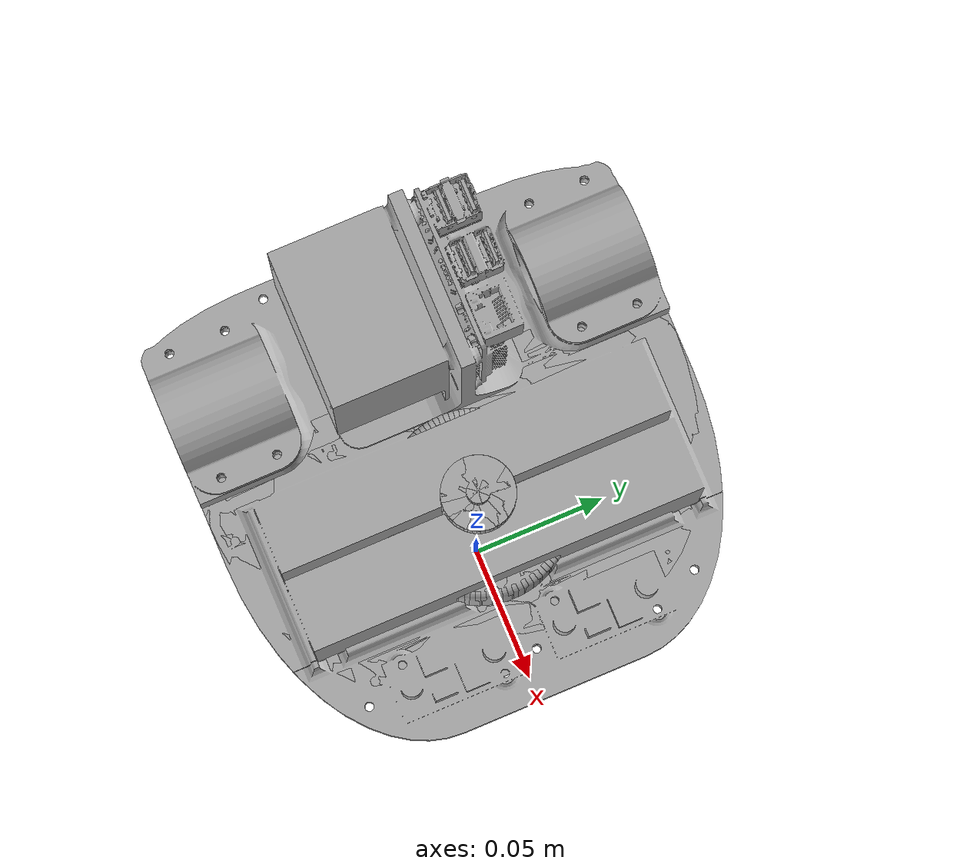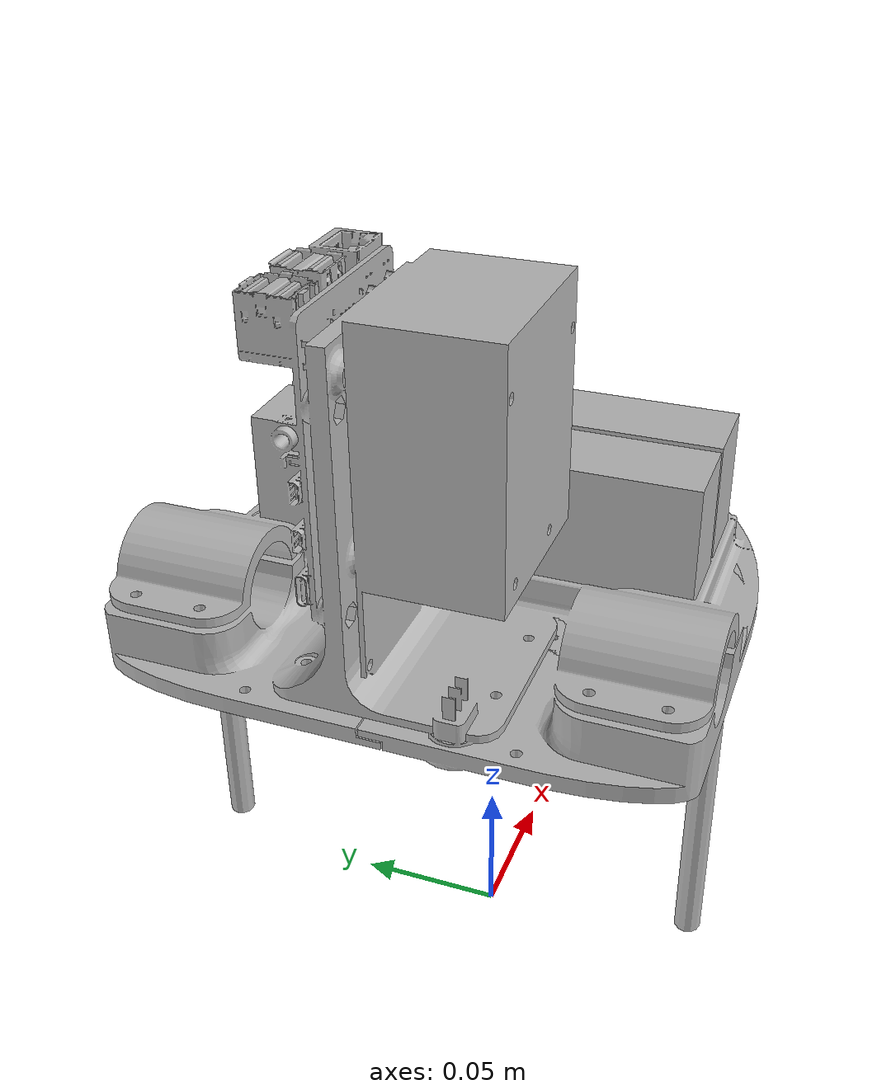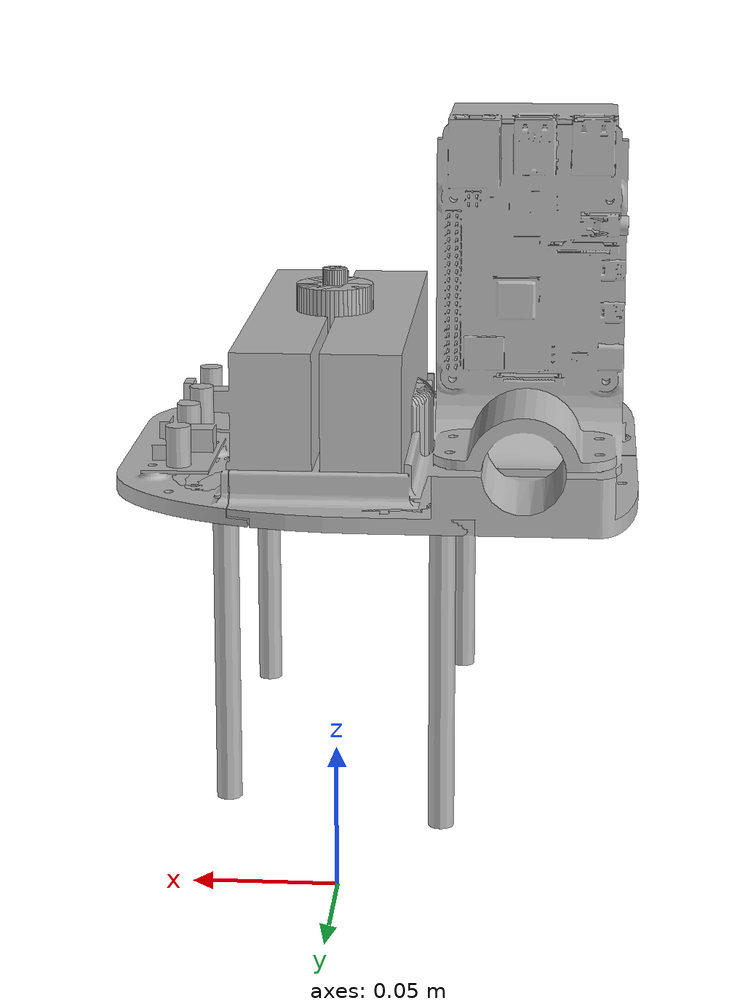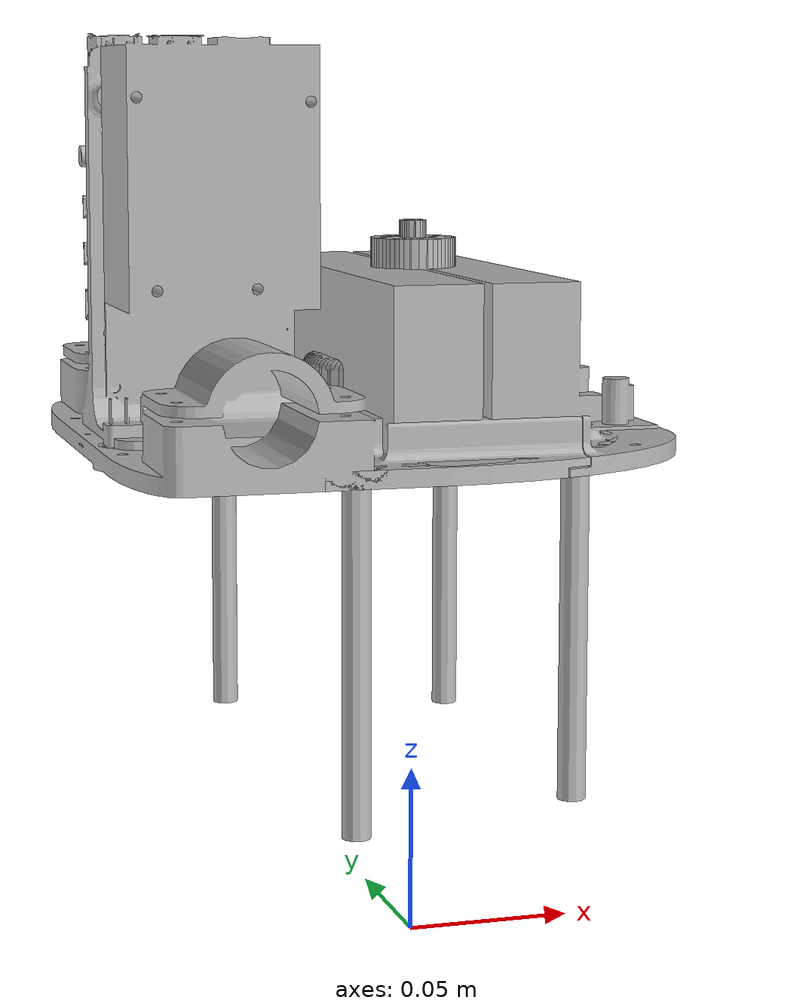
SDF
<?xml version="1.0" ?>
<!-- Requires STL files in meshes/. Use model.sdf for built-in primitives. -->
<sdf version="1.9">
  <model name="course_robot">
    <pose>0 0 0.15 0 0 0</pose>
    <static>true</static>
    <link name="base_link">
      <inertial>
        <mass>5.0</mass>
        <inertia>
          <ixx>0.2</ixx>
          <iyy>0.2</iyy>
          <izz>0.2</izz>
          <ixy>0</ixy>
          <ixz>0</ixz>
          <iyz>0</iyz>
        </inertia>
      </inertial>
      <visual name="platforma">
        <pose>0 0 0 0 0 1.57079632679</pose>
        <geometry>
          <mesh>
            <uri>model://course_robot/meshes/Platforma.STL</uri>
            <scale>1 1 1</scale>
          </mesh>
        </geometry>
      </visual>
      <visual name="etaj_2">
        <pose>0 0 0 0 0 1.57079632679</pose>
        <geometry>
          <mesh>
            <uri>model://course_robot/meshes/etaj_2.STL</uri>
            <scale>1 1 1</scale>
          </mesh>
        </geometry>
      </visual>
      <visual name="koleso_levoe">
        <geometry>
          <mesh>
            <uri>model://course_robot/meshes/Koleso_levoe.STL</uri>
            <scale>1 1 1</scale>
          </mesh>
        </geometry>
      </visual>
      <visual name="koleso_pravoe">
        <geometry>
          <mesh>
            <uri>model://course_robot/meshes/Koleso_pravoe.STL</uri>
            <scale>1 1 1</scale>
          </mesh>
        </geometry>
      </visual>
      <visual name="motor_leviy">
        <pose>0 0 0 0 0 1.57079632679</pose>
        <geometry>
          <mesh>
            <uri>model://course_robot/meshes/Motor_leviy.STL</uri>
            <scale>1 1 1</scale>
          </mesh>
        </geometry>
      </visual>
      <visual name="motor_praviy">
        <pose>0 0 0 0 0 1.57079632679</pose>
        <geometry>
          <mesh>
            <uri>model://course_robot/meshes/Motor_praviy.STL</uri>
            <scale>1 1 1</scale>
          </mesh>
        </geometry>
      </visual>
      <visual name="sharik_levo">
        <pose>0 0 0 0 0 1.57079632679</pose>
        <geometry>
          <mesh>
            <uri>model://course_robot/meshes/Sharik_levo.STL</uri>
            <scale>1 1 1</scale>
          </mesh>
        </geometry>
      </visual>
      <visual name="sharik_niz">
        <pose>0 0 0 0 0 1.57079632679</pose>
        <geometry>
          <mesh>
            <uri>model://course_robot/meshes/Sharik_niz.STL</uri>
            <scale>1 1 1</scale>
          </mesh>
        </geometry>
      </visual>
      <visual name="sharik_pravo">
        <pose>0 0 0 0 0 1.57079632679</pose>
        <geometry>
          <mesh>
            <uri>model://course_robot/meshes/Sharik_pravo.STL</uri>
            <scale>1 1 1</scale>
          </mesh>
        </geometry>
      </visual>
    </link>
  </model>
</sdf>
